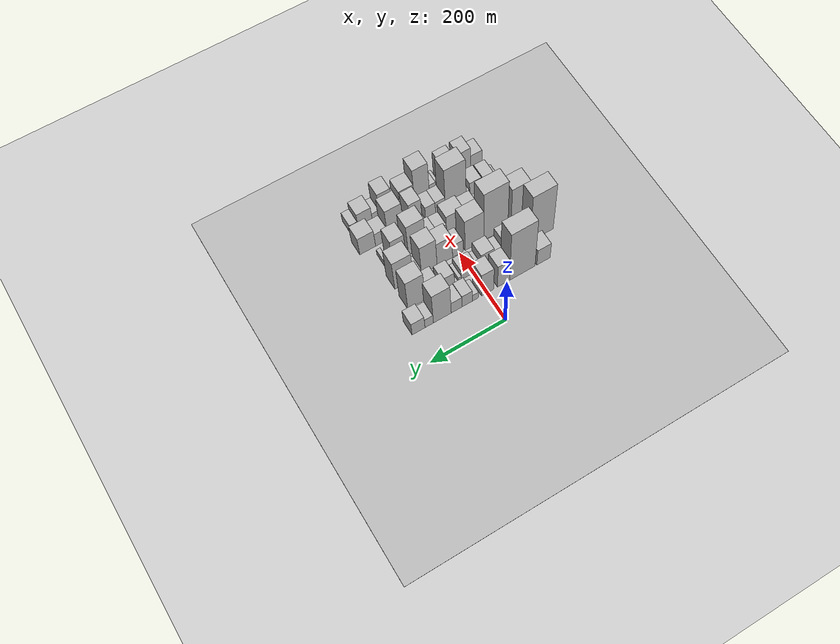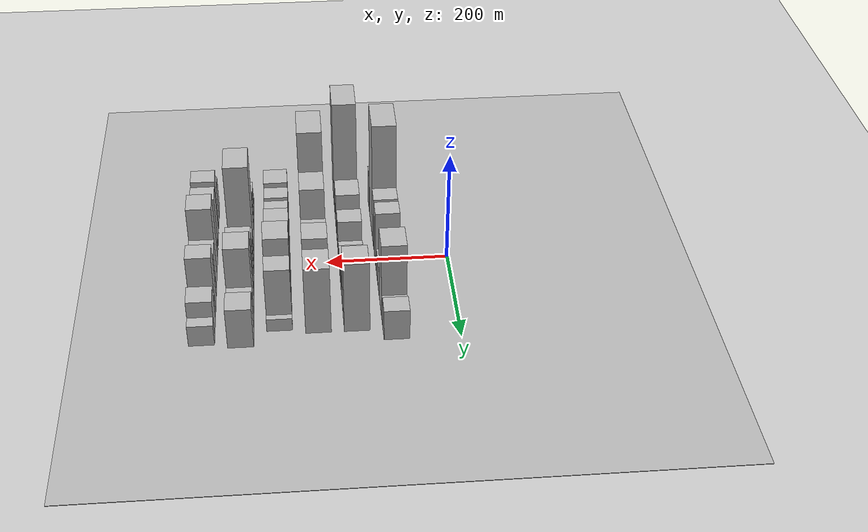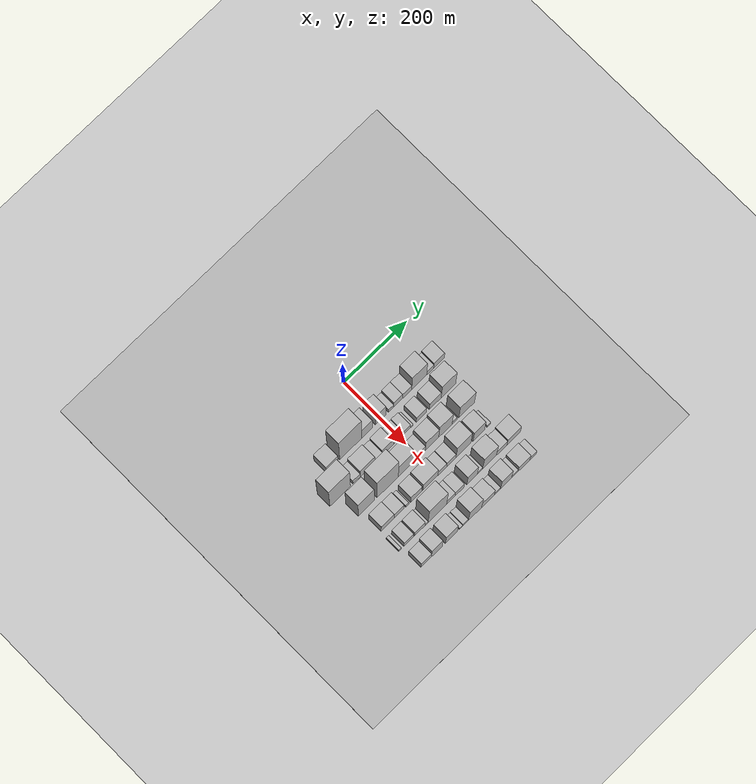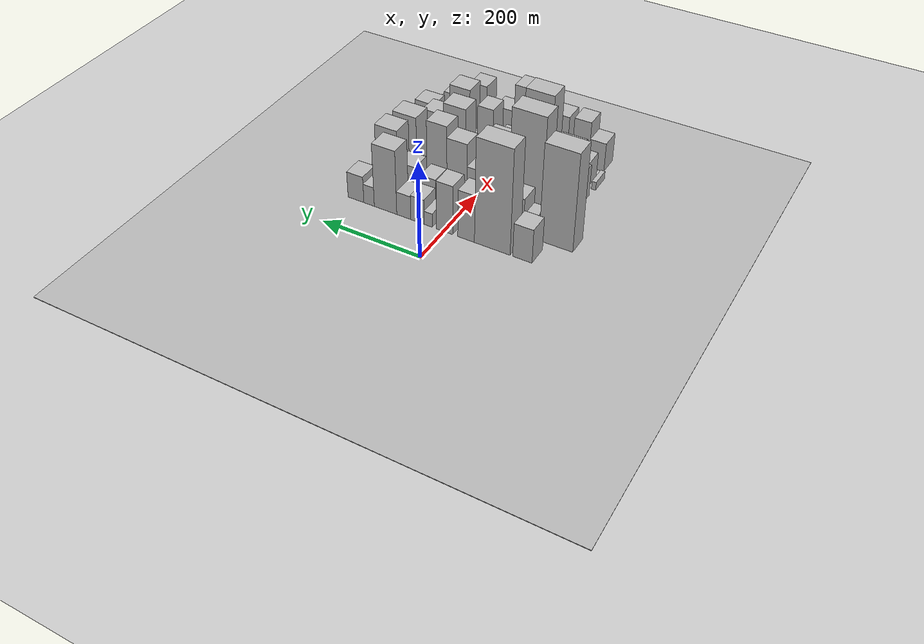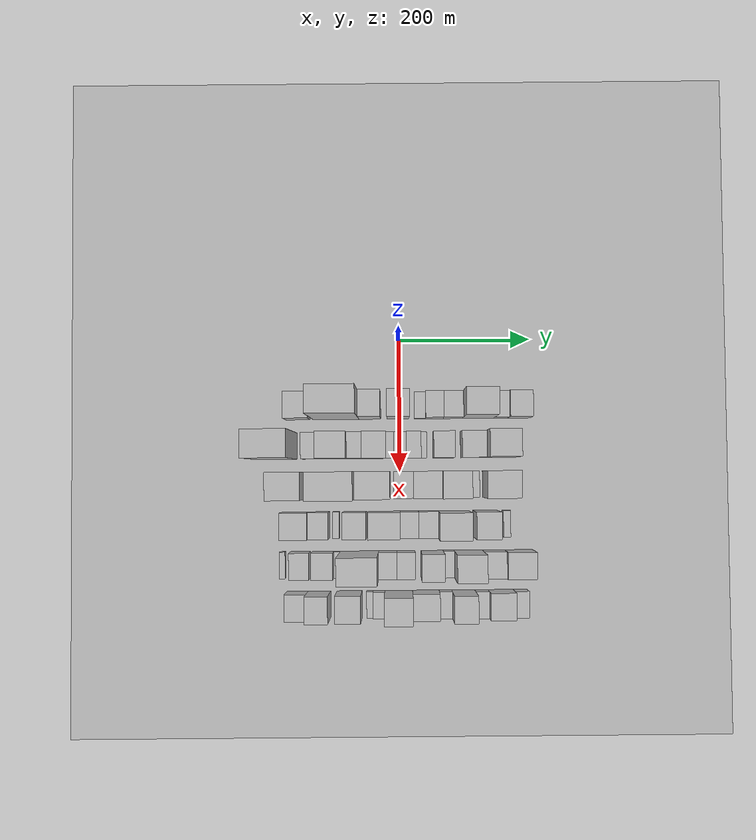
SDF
<sdf version="1.6">
 <world name="default">
  <include><name>ground_plane_1</name><uri>model://HANNAS_ground_plane</uri></include>
  <include>
   <name>ground_plane_2</name>
   <uri>model://HANNAS_ground_plane</uri>
   <pose>100 0 0  0 0 0</pose>
  </include>
  <model name="building_21">
   <static>1</static>
   <pose>100.0000 -154.0968 0 0.000000 0.000000 0.000000</pose>
   <link name="link">
    <pose>0 0 36.00 0 0 0</pose>
    <collision name="collision"><geometry><box><size>40.0000 36.9153 72.0000</size></box></geometry></collision>
    <visual name="visual">
     <cast_shadows>0</cast_shadows>
     <geometry><box><size>40.0000 36.9153 72.0000</size></box></geometry>
     <material>
      <script>
       <uri>model://HANNAS_wall/materials/scripts</uri>
       <uri>model://HANNAS_wall/materials/textures</uri>
       <name>vrc/HANNAS_wall</name>
      </script>
     </material>
    </visual>
   </link>
  </model>
  <model name="building_22">
   <static>1</static>
   <pose>100.0000 -95.8828 0 0.000000 0.000000 0.000000</pose>
   <link name="link">
    <pose>0 0 111.00 0 0 0</pose>
    <collision name="collision"><geometry><box><size>40.0000 69.5129 222.0000</size></box></geometry></collision>
    <visual name="visual">
     <cast_shadows>0</cast_shadows>
     <geometry><box><size>40.0000 69.5129 222.0000</size></box></geometry>
     <material>
      <script>
       <uri>model://HANNAS_wall/materials/scripts</uri>
       <uri>model://HANNAS_wall/materials/textures</uri>
       <name>vrc/HANNAS_wall</name>
      </script>
     </material>
    </visual>
   </link>
  </model>
  <model name="building_23">
   <static>1</static>
   <pose>100.0000 -44.6378 0 0.000000 0.000000 0.000000</pose>
   <link name="link">
    <pose>0 0 51.00 0 0 0</pose>
    <collision name="collision"><geometry><box><size>40.0000 32.9771 102.0000</size></box></geometry></collision>
    <visual name="visual">
     <cast_shadows>0</cast_shadows>
     <geometry><box><size>40.0000 32.9771 102.0000</size></box></geometry>
     <material>
      <script>
       <uri>model://HANNAS_wall/materials/scripts</uri>
       <uri>model://HANNAS_wall/materials/textures</uri>
       <name>vrc/HANNAS_wall</name>
      </script>
     </material>
    </visual>
   </link>
  </model>
  <model name="building_24">
   <static>1</static>
   <pose>100.0000 -1.5808 0 0.000000 0.000000 0.000000</pose>
   <link name="link">
    <pose>0 0 52.50 0 0 0</pose>
    <collision name="collision"><geometry><box><size>40.0000 33.1368 105.0000</size></box></geometry></collision>
    <visual name="visual">
     <cast_shadows>0</cast_shadows>
     <geometry><box><size>40.0000 33.1368 105.0000</size></box></geometry>
     <material>
      <script>
       <uri>model://HANNAS_wall/materials/scripts</uri>
       <uri>model://HANNAS_wall/materials/textures</uri>
       <name>vrc/HANNAS_wall</name>
      </script>
     </material>
    </visual>
   </link>
  </model>
  <model name="building_25">
   <static>1</static>
   <pose>100.0000 31.3695 0 0.000000 0.000000 0.000000</pose>
   <link name="link">
    <pose>0 0 15.00 0 0 0</pose>
    <collision name="collision"><geometry><box><size>40.0000 16.7637 30.0000</size></box></geometry></collision>
    <visual name="visual">
     <cast_shadows>0</cast_shadows>
     <geometry><box><size>40.0000 16.7637 30.0000</size></box></geometry>
     <material>
      <script>
       <uri>model://HANNAS_wall/materials/scripts</uri>
       <uri>model://HANNAS_wall/materials/textures</uri>
       <name>vrc/HANNAS_wall</name>
      </script>
     </material>
    </visual>
   </link>
  </model>
  <model name="building_26">
   <static>1</static>
   <pose>100.0000 53.5185 0 0.000000 0.000000 0.000000</pose>
   <link name="link">
    <pose>0 0 27.00 0 0 0</pose>
    <collision name="collision"><geometry><box><size>40.0000 27.5342 54.0000</size></box></geometry></collision>
    <visual name="visual">
     <cast_shadows>0</cast_shadows>
     <geometry><box><size>40.0000 27.5342 54.0000</size></box></geometry>
     <material>
      <script>
       <uri>model://HANNAS_wall/materials/scripts</uri>
       <uri>model://HANNAS_wall/materials/textures</uri>
       <name>vrc/HANNAS_wall</name>
      </script>
     </material>
    </visual>
   </link>
  </model>
  <model name="building_27">
   <static>1</static>
   <pose>100.0000 81.8426 0 0.000000 0.000000 0.000000</pose>
   <link name="link">
    <pose>0 0 25.50 0 0 0</pose>
    <collision name="collision"><geometry><box><size>40.0000 29.1141 51.0000</size></box></geometry></collision>
    <visual name="visual">
     <cast_shadows>0</cast_shadows>
     <geometry><box><size>40.0000 29.1141 51.0000</size></box></geometry>
     <material>
      <script>
       <uri>model://HANNAS_wall/materials/scripts</uri>
       <uri>model://HANNAS_wall/materials/textures</uri>
       <name>vrc/HANNAS_wall</name>
      </script>
     </material>
    </visual>
   </link>
  </model>
  <model name="building_28">
   <static>1</static>
   <pose>100.0000 120.0571 0 0.000000 0.000000 0.000000</pose>
   <link name="link">
    <pose>0 0 69.00 0 0 0</pose>
    <collision name="collision"><geometry><box><size>40.0000 47.3147 138.0000</size></box></geometry></collision>
    <visual name="visual">
     <cast_shadows>0</cast_shadows>
     <geometry><box><size>40.0000 47.3147 138.0000</size></box></geometry>
     <material>
      <script>
       <uri>model://HANNAS_wall/materials/scripts</uri>
       <uri>model://HANNAS_wall/materials/textures</uri>
       <name>vrc/HANNAS_wall</name>
      </script>
     </material>
    </visual>
   </link>
  </model>
  <model name="building_29">
   <static>1</static>
   <pose>100.0000 154.8591 0 0.000000 0.000000 0.000000</pose>
   <link name="link">
    <pose>0 0 21.00 0 0 0</pose>
    <collision name="collision"><geometry><box><size>40.0000 22.2893 42.0000</size></box></geometry></collision>
    <visual name="visual">
     <cast_shadows>0</cast_shadows>
     <geometry><box><size>40.0000 22.2893 42.0000</size></box></geometry>
     <material>
      <script>
       <uri>model://HANNAS_wall/materials/scripts</uri>
       <uri>model://HANNAS_wall/materials/textures</uri>
       <name>vrc/HANNAS_wall</name>
      </script>
     </material>
    </visual>
   </link>
  </model>
  <model name="building_30">
   <static>1</static>
   <pose>100.0000 183.0013 0 0.000000 0.000000 0.000000</pose>
   <link name="link">
    <pose>0 0 28.50 0 0 0</pose>
    <collision name="collision"><geometry><box><size>40.0000 33.9953 57.0000</size></box></geometry></collision>
    <visual name="visual">
     <cast_shadows>0</cast_shadows>
     <geometry><box><size>40.0000 33.9953 57.0000</size></box></geometry>
     <material>
      <script>
       <uri>model://HANNAS_wall/materials/scripts</uri>
       <uri>model://HANNAS_wall/materials/textures</uri>
       <name>vrc/HANNAS_wall</name>
      </script>
     </material>
    </visual>
   </link>
  </model>
  <model name="building_66">
   <static>1</static>
   <pose>160.0000 -188.2253 0 0.000000 0.000000 0.000000</pose>
   <link name="link">
    <pose>0 0 103.50 0 0 0</pose>
    <collision name="collision"><geometry><box><size>40.0000 64.3321 207.0000</size></box></geometry></collision>
    <visual name="visual">
     <cast_shadows>0</cast_shadows>
     <geometry><box><size>40.0000 64.3321 207.0000</size></box></geometry>
     <material>
      <script>
       <uri>model://HANNAS_wall/materials/scripts</uri>
       <uri>model://HANNAS_wall/materials/textures</uri>
       <name>vrc/HANNAS_wall</name>
      </script>
     </material>
    </visual>
   </link>
  </model>
  <model name="building_67">
   <static>1</static>
   <pose>160.0000 -136.6846 0 0.000000 0.000000 0.000000</pose>
   <link name="link">
    <pose>0 0 22.50 0 0 0</pose>
    <collision name="collision"><geometry><box><size>40.0000 22.7494 45.0000</size></box></geometry></collision>
    <visual name="visual">
     <cast_shadows>0</cast_shadows>
     <geometry><box><size>40.0000 22.7494 45.0000</size></box></geometry>
     <material>
      <script>
       <uri>model://HANNAS_wall/materials/scripts</uri>
       <uri>model://HANNAS_wall/materials/textures</uri>
       <name>vrc/HANNAS_wall</name>
      </script>
     </material>
    </visual>
   </link>
  </model>
  <model name="building_68">
   <static>1</static>
   <pose>160.0000 -102.4697 0 0.000000 0.000000 0.000000</pose>
   <link name="link">
    <pose>0 0 39.00 0 0 0</pose>
    <collision name="collision"><geometry><box><size>40.0000 45.6802 78.0000</size></box></geometry></collision>
    <visual name="visual">
     <cast_shadows>0</cast_shadows>
     <geometry><box><size>40.0000 45.6802 78.0000</size></box></geometry>
     <material>
      <script>
       <uri>model://HANNAS_wall/materials/scripts</uri>
       <uri>model://HANNAS_wall/materials/textures</uri>
       <name>vrc/HANNAS_wall</name>
      </script>
     </material>
    </visual>
   </link>
  </model>
  <model name="building_69">
   <static>1</static>
   <pose>160.0000 -67.9614 0 0.000000 0.000000 0.000000</pose>
   <link name="link">
    <pose>0 0 21.00 0 0 0</pose>
    <collision name="collision"><geometry><box><size>40.0000 23.3363 42.0000</size></box></geometry></collision>
    <visual name="visual">
     <cast_shadows>0</cast_shadows>
     <geometry><box><size>40.0000 23.3363 42.0000</size></box></geometry>
     <material>
      <script>
       <uri>model://HANNAS_wall/materials/scripts</uri>
       <uri>model://HANNAS_wall/materials/textures</uri>
       <name>vrc/HANNAS_wall</name>
      </script>
     </material>
    </visual>
   </link>
  </model>
  <model name="building_70">
   <static>1</static>
   <pose>160.0000 -38.4464 0 0.000000 0.000000 0.000000</pose>
   <link name="link">
    <pose>0 0 33.00 0 0 0</pose>
    <collision name="collision"><geometry><box><size>40.0000 35.6937 66.0000</size></box></geometry></collision>
    <visual name="visual">
     <cast_shadows>0</cast_shadows>
     <geometry><box><size>40.0000 35.6937 66.0000</size></box></geometry>
     <material>
      <script>
       <uri>model://HANNAS_wall/materials/scripts</uri>
       <uri>model://HANNAS_wall/materials/textures</uri>
       <name>vrc/HANNAS_wall</name>
      </script>
     </material>
    </visual>
   </link>
  </model>
  <model name="building_71">
   <static>1</static>
   <pose>160.0000 -14.7528 0 0.000000 0.000000 0.000000</pose>
   <link name="link">
    <pose>0 0 13.50 0 0 0</pose>
    <collision name="collision"><geometry><box><size>40.0000 11.6936 27.0000</size></box></geometry></collision>
    <visual name="visual">
     <cast_shadows>0</cast_shadows>
     <geometry><box><size>40.0000 11.6936 27.0000</size></box></geometry>
     <material>
      <script>
       <uri>model://HANNAS_wall/materials/scripts</uri>
       <uri>model://HANNAS_wall/materials/textures</uri>
       <name>vrc/HANNAS_wall</name>
      </script>
     </material>
    </visual>
   </link>
  </model>
  <model name="building_72">
   <static>1</static>
   <pose>160.0000 0.5937 0 0.000000 0.000000 0.000000</pose>
   <link name="link">
    <pose>0 0 18.00 0 0 0</pose>
    <collision name="collision"><geometry><box><size>40.0000 18.9995 36.0000</size></box></geometry></collision>
    <visual name="visual">
     <cast_shadows>0</cast_shadows>
     <geometry><box><size>40.0000 18.9995 36.0000</size></box></geometry>
     <material>
      <script>
       <uri>model://HANNAS_wall/materials/scripts</uri>
       <uri>model://HANNAS_wall/materials/textures</uri>
       <name>vrc/HANNAS_wall</name>
      </script>
     </material>
    </visual>
   </link>
  </model>
  <model name="building_73">
   <static>1</static>
   <pose>160.0000 21.3343 0 0.000000 0.000000 0.000000</pose>
   <link name="link">
    <pose>0 0 21.00 0 0 0</pose>
    <collision name="collision"><geometry><box><size>40.0000 22.4817 42.0000</size></box></geometry></collision>
    <visual name="visual">
     <cast_shadows>0</cast_shadows>
     <geometry><box><size>40.0000 22.4817 42.0000</size></box></geometry>
     <material>
      <script>
       <uri>model://HANNAS_wall/materials/scripts</uri>
       <uri>model://HANNAS_wall/materials/textures</uri>
       <name>vrc/HANNAS_wall</name>
      </script>
     </material>
    </visual>
   </link>
  </model>
  <model name="building_74">
   <static>1</static>
   <pose>160.0000 36.9012 0 0.000000 0.000000 0.000000</pose>
   <link name="link">
    <pose>0 0 9.00 0 0 0</pose>
    <collision name="collision"><geometry><box><size>40.0000 8.6519 18.0000</size></box></geometry></collision>
    <visual name="visual">
     <cast_shadows>0</cast_shadows>
     <geometry><box><size>40.0000 8.6519 18.0000</size></box></geometry>
     <material>
      <script>
       <uri>model://HANNAS_wall/materials/scripts</uri>
       <uri>model://HANNAS_wall/materials/textures</uri>
       <name>vrc/HANNAS_wall</name>
      </script>
     </material>
    </visual>
   </link>
  </model>
  <model name="building_75">
   <static>1</static>
   <pose>160.0000 67.1810 0 0.000000 0.000000 0.000000</pose>
   <link name="link">
    <pose>0 0 27.00 0 0 0</pose>
    <collision name="collision"><geometry><box><size>40.0000 31.9078 54.0000</size></box></geometry></collision>
    <visual name="visual">
     <cast_shadows>0</cast_shadows>
     <geometry><box><size>40.0000 31.9078 54.0000</size></box></geometry>
     <material>
      <script>
       <uri>model://HANNAS_wall/materials/scripts</uri>
       <uri>model://HANNAS_wall/materials/textures</uri>
       <name>vrc/HANNAS_wall</name>
      </script>
     </material>
    </visual>
   </link>
  </model>
  <model name="building_76">
   <static>1</static>
   <pose>160.0000 111.5208 0 0.000000 0.000000 0.000000</pose>
   <link name="link">
    <pose>0 0 33.00 0 0 0</pose>
    <collision name="collision"><geometry><box><size>40.0000 36.7718 66.0000</size></box></geometry></collision>
    <visual name="visual">
     <cast_shadows>0</cast_shadows>
     <geometry><box><size>40.0000 36.7718 66.0000</size></box></geometry>
     <material>
      <script>
       <uri>model://HANNAS_wall/materials/scripts</uri>
       <uri>model://HANNAS_wall/materials/textures</uri>
       <name>vrc/HANNAS_wall</name>
      </script>
     </material>
    </visual>
   </link>
  </model>
  <model name="building_77">
   <static>1</static>
   <pose>160.0000 152.9654 0 0.000000 0.000000 0.000000</pose>
   <link name="link">
    <pose>0 0 66.00 0 0 0</pose>
    <collision name="collision"><geometry><box><size>40.0000 46.1174 132.0000</size></box></geometry></collision>
    <visual name="visual">
     <cast_shadows>0</cast_shadows>
     <geometry><box><size>40.0000 46.1174 132.0000</size></box></geometry>
     <material>
      <script>
       <uri>model://HANNAS_wall/materials/scripts</uri>
       <uri>model://HANNAS_wall/materials/textures</uri>
       <name>vrc/HANNAS_wall</name>
      </script>
     </material>
    </visual>
   </link>
  </model>
  <model name="building_123">
   <static>1</static>
   <pose>220.0000 -165.6311 0 0.000000 0.000000 0.000000</pose>
   <link name="link">
    <pose>0 0 82.50 0 0 0</pose>
    <collision name="collision"><geometry><box><size>40.0000 49.7036 165.0000</size></box></geometry></collision>
    <visual name="visual">
     <cast_shadows>0</cast_shadows>
     <geometry><box><size>40.0000 49.7036 165.0000</size></box></geometry>
     <material>
      <script>
       <uri>model://HANNAS_wall/materials/scripts</uri>
       <uri>model://HANNAS_wall/materials/textures</uri>
       <name>vrc/HANNAS_wall</name>
      </script>
     </material>
    </visual>
   </link>
  </model>
  <model name="building_124">
   <static>1</static>
   <pose>220.0000 -98.4068 0 0.000000 0.000000 0.000000</pose>
   <link name="link">
    <pose>0 0 106.50 0 0 0</pose>
    <collision name="collision"><geometry><box><size>40.0000 66.7451 213.0000</size></box></geometry></collision>
    <visual name="visual">
     <cast_shadows>0</cast_shadows>
     <geometry><box><size>40.0000 66.7451 213.0000</size></box></geometry>
     <material>
      <script>
       <uri>model://HANNAS_wall/materials/scripts</uri>
       <uri>model://HANNAS_wall/materials/textures</uri>
       <name>vrc/HANNAS_wall</name>
      </script>
     </material>
    </visual>
   </link>
  </model>
  <model name="building_125">
   <static>1</static>
   <pose>220.0000 -39.5486 0 0.000000 0.000000 0.000000</pose>
   <link name="link">
    <pose>0 0 69.00 0 0 0</pose>
    <collision name="collision"><geometry><box><size>40.0000 50.9713 138.0000</size></box></geometry></collision>
    <visual name="visual">
     <cast_shadows>0</cast_shadows>
     <geometry><box><size>40.0000 50.9713 138.0000</size></box></geometry>
     <material>
      <script>
       <uri>model://HANNAS_wall/materials/scripts</uri>
       <uri>model://HANNAS_wall/materials/textures</uri>
       <name>vrc/HANNAS_wall</name>
      </script>
     </material>
    </visual>
   </link>
  </model>
  <model name="building_126">
   <static>1</static>
   <pose>220.0000 5.5678 0 0.000000 0.000000 0.000000</pose>
   <link name="link">
    <pose>0 0 28.50 0 0 0</pose>
    <collision name="collision"><geometry><box><size>40.0000 29.2616 57.0000</size></box></geometry></collision>
    <visual name="visual">
     <cast_shadows>0</cast_shadows>
     <geometry><box><size>40.0000 29.2616 57.0000</size></box></geometry>
     <material>
      <script>
       <uri>model://HANNAS_wall/materials/scripts</uri>
       <uri>model://HANNAS_wall/materials/textures</uri>
       <name>vrc/HANNAS_wall</name>
      </script>
     </material>
    </visual>
   </link>
  </model>
  <model name="building_127">
   <static>1</static>
   <pose>220.0000 41.1750 0 0.000000 0.000000 0.000000</pose>
   <link name="link">
    <pose>0 0 52.50 0 0 0</pose>
    <collision name="collision"><geometry><box><size>40.0000 41.9528 105.0000</size></box></geometry></collision>
    <visual name="visual">
     <cast_shadows>0</cast_shadows>
     <geometry><box><size>40.0000 41.9528 105.0000</size></box></geometry>
     <material>
      <script>
       <uri>model://HANNAS_wall/materials/scripts</uri>
       <uri>model://HANNAS_wall/materials/textures</uri>
       <name>vrc/HANNAS_wall</name>
      </script>
     </material>
    </visual>
   </link>
  </model>
  <model name="building_128">
   <static>1</static>
   <pose>220.0000 83.3244 0 0.000000 0.000000 0.000000</pose>
   <link name="link">
    <pose>0 0 64.50 0 0 0</pose>
    <collision name="collision"><geometry><box><size>40.0000 42.3461 129.0000</size></box></geometry></collision>
    <visual name="visual">
     <cast_shadows>0</cast_shadows>
     <geometry><box><size>40.0000 42.3461 129.0000</size></box></geometry>
     <material>
      <script>
       <uri>model://HANNAS_wall/materials/scripts</uri>
       <uri>model://HANNAS_wall/materials/textures</uri>
       <name>vrc/HANNAS_wall</name>
      </script>
     </material>
    </visual>
   </link>
  </model>
  <model name="building_129">
   <static>1</static>
   <pose>220.0000 112.3163 0 0.000000 0.000000 0.000000</pose>
   <link name="link">
    <pose>0 0 15.00 0 0 0</pose>
    <collision name="collision"><geometry><box><size>40.0000 15.6376 30.0000</size></box></geometry></collision>
    <visual name="visual">
     <cast_shadows>0</cast_shadows>
     <geometry><box><size>40.0000 15.6376 30.0000</size></box></geometry>
     <material>
      <script>
       <uri>model://HANNAS_wall/materials/scripts</uri>
       <uri>model://HANNAS_wall/materials/textures</uri>
       <name>vrc/HANNAS_wall</name>
      </script>
     </material>
    </visual>
   </link>
  </model>
  <model name="building_130">
   <static>1</static>
   <pose>220.0000 150.8957 0 0.000000 0.000000 0.000000</pose>
   <link name="link">
    <pose>0 0 63.00 0 0 0</pose>
    <collision name="collision"><geometry><box><size>40.0000 49.5213 126.0000</size></box></geometry></collision>
    <visual name="visual">
     <cast_shadows>0</cast_shadows>
     <geometry><box><size>40.0000 49.5213 126.0000</size></box></geometry>
     <material>
      <script>
       <uri>model://HANNAS_wall/materials/scripts</uri>
       <uri>model://HANNAS_wall/materials/textures</uri>
       <name>vrc/HANNAS_wall</name>
      </script>
     </material>
    </visual>
   </link>
  </model>
  <model name="building_175">
   <static>1</static>
   <pose>280.0000 -157.8525 0 0.000000 0.000000 0.000000</pose>
   <link name="link">
    <pose>0 0 34.50 0 0 0</pose>
    <collision name="collision"><geometry><box><size>40.0000 41.0170 69.0000</size></box></geometry></collision>
    <visual name="visual">
     <cast_shadows>0</cast_shadows>
     <geometry><box><size>40.0000 41.0170 69.0000</size></box></geometry>
     <material>
      <script>
       <uri>model://HANNAS_wall/materials/scripts</uri>
       <uri>model://HANNAS_wall/materials/textures</uri>
       <name>vrc/HANNAS_wall</name>
      </script>
     </material>
    </visual>
   </link>
  </model>
  <model name="building_176">
   <static>1</static>
   <pose>280.0000 -121.9343 0 0.000000 0.000000 0.000000</pose>
   <link name="link">
    <pose>0 0 30.00 0 0 0</pose>
    <collision name="collision"><geometry><box><size>40.0000 30.8192 60.0000</size></box></geometry></collision>
    <visual name="visual">
     <cast_shadows>0</cast_shadows>
     <geometry><box><size>40.0000 30.8192 60.0000</size></box></geometry>
     <material>
      <script>
       <uri>model://HANNAS_wall/materials/scripts</uri>
       <uri>model://HANNAS_wall/materials/textures</uri>
       <name>vrc/HANNAS_wall</name>
      </script>
     </material>
    </visual>
   </link>
  </model>
  <model name="building_177">
   <static>1</static>
   <pose>280.0000 -96.4898 0 0.000000 0.000000 0.000000</pose>
   <link name="link">
    <pose>0 0 12.00 0 0 0</pose>
    <collision name="collision"><geometry><box><size>40.0000 10.0699 24.0000</size></box></geometry></collision>
    <visual name="visual">
     <cast_shadows>0</cast_shadows>
     <geometry><box><size>40.0000 10.0699 24.0000</size></box></geometry>
     <material>
      <script>
       <uri>model://HANNAS_wall/materials/scripts</uri>
       <uri>model://HANNAS_wall/materials/textures</uri>
       <name>vrc/HANNAS_wall</name>
      </script>
     </material>
    </visual>
   </link>
  </model>
  <model name="building_178">
   <static>1</static>
   <pose>280.0000 -67.9290 0 0.000000 0.000000 0.000000</pose>
   <link name="link">
    <pose>0 0 34.50 0 0 0</pose>
    <collision name="collision"><geometry><box><size>40.0000 35.0517 69.0000</size></box></geometry></collision>
    <visual name="visual">
     <cast_shadows>0</cast_shadows>
     <geometry><box><size>40.0000 35.0517 69.0000</size></box></geometry>
     <material>
      <script>
       <uri>model://HANNAS_wall/materials/scripts</uri>
       <uri>model://HANNAS_wall/materials/textures</uri>
       <name>vrc/HANNAS_wall</name>
      </script>
     </material>
    </visual>
   </link>
  </model>
  <model name="building_179">
   <static>1</static>
   <pose>280.0000 -23.6596 0 0.000000 0.000000 0.000000</pose>
   <link name="link">
    <pose>0 0 40.50 0 0 0</pose>
    <collision name="collision"><geometry><box><size>40.0000 47.4871 81.0000</size></box></geometry></collision>
    <visual name="visual">
     <cast_shadows>0</cast_shadows>
     <geometry><box><size>40.0000 47.4871 81.0000</size></box></geometry>
     <material>
      <script>
       <uri>model://HANNAS_wall/materials/scripts</uri>
       <uri>model://HANNAS_wall/materials/textures</uri>
       <name>vrc/HANNAS_wall</name>
      </script>
     </material>
    </visual>
   </link>
  </model>
  <model name="building_180">
   <static>1</static>
   <pose>280.0000 13.9901 0 0.000000 0.000000 0.000000</pose>
   <link name="link">
    <pose>0 0 24.00 0 0 0</pose>
    <collision name="collision"><geometry><box><size>40.0000 27.8123 48.0000</size></box></geometry></collision>
    <visual name="visual">
     <cast_shadows>0</cast_shadows>
     <geometry><box><size>40.0000 27.8123 48.0000</size></box></geometry>
     <material>
      <script>
       <uri>model://HANNAS_wall/materials/scripts</uri>
       <uri>model://HANNAS_wall/materials/textures</uri>
       <name>vrc/HANNAS_wall</name>
      </script>
     </material>
    </visual>
   </link>
  </model>
  <model name="building_181">
   <static>1</static>
   <pose>280.0000 42.5396 0 0.000000 0.000000 0.000000</pose>
   <link name="link">
    <pose>0 0 25.50 0 0 0</pose>
    <collision name="collision"><geometry><box><size>40.0000 29.2867 51.0000</size></box></geometry></collision>
    <visual name="visual">
     <cast_shadows>0</cast_shadows>
     <geometry><box><size>40.0000 29.2867 51.0000</size></box></geometry>
     <material>
      <script>
       <uri>model://HANNAS_wall/materials/scripts</uri>
       <uri>model://HANNAS_wall/materials/textures</uri>
       <name>vrc/HANNAS_wall</name>
      </script>
     </material>
    </visual>
   </link>
  </model>
  <model name="building_182">
   <static>1</static>
   <pose>280.0000 80.6479 0 0.000000 0.000000 0.000000</pose>
   <link name="link">
    <pose>0 0 66.00 0 0 0</pose>
    <collision name="collision"><geometry><box><size>40.0000 46.9299 132.0000</size></box></geometry></collision>
    <visual name="visual">
     <cast_shadows>0</cast_shadows>
     <geometry><box><size>40.0000 46.9299 132.0000</size></box></geometry>
     <material>
      <script>
       <uri>model://HANNAS_wall/materials/scripts</uri>
       <uri>model://HANNAS_wall/materials/textures</uri>
       <name>vrc/HANNAS_wall</name>
      </script>
     </material>
    </visual>
   </link>
  </model>
  <model name="building_183">
   <static>1</static>
   <pose>280.0000 129.4287 0 0.000000 0.000000 0.000000</pose>
   <link name="link">
    <pose>0 0 52.50 0 0 0</pose>
    <collision name="collision"><geometry><box><size>40.0000 36.6317 105.0000</size></box></geometry></collision>
    <visual name="visual">
     <cast_shadows>0</cast_shadows>
     <geometry><box><size>40.0000 36.6317 105.0000</size></box></geometry>
     <material>
      <script>
       <uri>model://HANNAS_wall/materials/scripts</uri>
       <uri>model://HANNAS_wall/materials/textures</uri>
       <name>vrc/HANNAS_wall</name>
      </script>
     </material>
    </visual>
   </link>
  </model>
  <model name="building_184">
   <static>1</static>
   <pose>280.0000 161.1347 0 0.000000 0.000000 0.000000</pose>
   <link name="link">
    <pose>0 0 12.00 0 0 0</pose>
    <collision name="collision"><geometry><box><size>40.0000 10.7803 24.0000</size></box></geometry></collision>
    <visual name="visual">
     <cast_shadows>0</cast_shadows>
     <geometry><box><size>40.0000 10.7803 24.0000</size></box></geometry>
     <material>
      <script>
       <uri>model://HANNAS_wall/materials/scripts</uri>
       <uri>model://HANNAS_wall/materials/textures</uri>
       <name>vrc/HANNAS_wall</name>
      </script>
     </material>
    </visual>
   </link>
  </model>
  <model name="building_235">
   <static>1</static>
   <pose>340.0000 -178.0726 0 0.000000 0.000000 0.000000</pose>
   <link name="link">
    <pose>0 0 9.00 0 0 0</pose>
    <collision name="collision"><geometry><box><size>40.0000 8.5152 18.0000</size></box></geometry></collision>
    <visual name="visual">
     <cast_shadows>0</cast_shadows>
     <geometry><box><size>40.0000 8.5152 18.0000</size></box></geometry>
     <material>
      <script>
       <uri>model://HANNAS_wall/materials/scripts</uri>
       <uri>model://HANNAS_wall/materials/textures</uri>
       <name>vrc/HANNAS_wall</name>
      </script>
     </material>
    </visual>
   </link>
  </model>
  <model name="building_236">
   <static>1</static>
   <pose>340.0000 -150.9149 0 0.000000 0.000000 0.000000</pose>
   <link name="link">
    <pose>0 0 27.00 0 0 0</pose>
    <collision name="collision"><geometry><box><size>40.0000 29.8001 54.0000</size></box></geometry></collision>
    <visual name="visual">
     <cast_shadows>0</cast_shadows>
     <geometry><box><size>40.0000 29.8001 54.0000</size></box></geometry>
     <material>
      <script>
       <uri>model://HANNAS_wall/materials/scripts</uri>
       <uri>model://HANNAS_wall/materials/textures</uri>
       <name>vrc/HANNAS_wall</name>
      </script>
     </material>
    </visual>
   </link>
  </model>
  <model name="building_237">
   <static>1</static>
   <pose>340.0000 -116.6095 0 0.000000 0.000000 0.000000</pose>
   <link name="link">
    <pose>0 0 28.50 0 0 0</pose>
    <collision name="collision"><geometry><box><size>40.0000 32.8107 57.0000</size></box></geometry></collision>
    <visual name="visual">
     <cast_shadows>0</cast_shadows>
     <geometry><box><size>40.0000 32.8107 57.0000</size></box></geometry>
     <material>
      <script>
       <uri>model://HANNAS_wall/materials/scripts</uri>
       <uri>model://HANNAS_wall/materials/textures</uri>
       <name>vrc/HANNAS_wall</name>
      </script>
     </material>
    </visual>
   </link>
  </model>
  <model name="building_238">
   <static>1</static>
   <pose>340.0000 -95.2290 0 0.000000 0.000000 0.000000</pose>
   <link name="link">
    <pose>0 0 12.00 0 0 0</pose>
    <collision name="collision"><geometry><box><size>40.0000 9.9504 24.0000</size></box></geometry></collision>
    <visual name="visual">
     <cast_shadows>0</cast_shadows>
     <geometry><box><size>40.0000 9.9504 24.0000</size></box></geometry>
     <material>
      <script>
       <uri>model://HANNAS_wall/materials/scripts</uri>
       <uri>model://HANNAS_wall/materials/textures</uri>
       <name>vrc/HANNAS_wall</name>
      </script>
     </material>
    </visual>
   </link>
  </model>
  <model name="building_239">
   <static>1</static>
   <pose>340.0000 -61.3835 0 0.000000 0.000000 0.000000</pose>
   <link name="link">
    <pose>0 0 87.00 0 0 0</pose>
    <collision name="collision"><geometry><box><size>40.0000 57.7405 174.0000</size></box></geometry></collision>
    <visual name="visual">
     <cast_shadows>0</cast_shadows>
     <geometry><box><size>40.0000 57.7405 174.0000</size></box></geometry>
     <material>
      <script>
       <uri>model://HANNAS_wall/materials/scripts</uri>
       <uri>model://HANNAS_wall/materials/textures</uri>
       <name>vrc/HANNAS_wall</name>
      </script>
     </material>
    </visual>
   </link>
  </model>
  <model name="building_240">
   <static>1</static>
   <pose>340.0000 -18.9860 0 0.000000 0.000000 0.000000</pose>
   <link name="link">
    <pose>0 0 27.00 0 0 0</pose>
    <collision name="collision"><geometry><box><size>40.0000 27.0545 54.0000</size></box></geometry></collision>
    <visual name="visual">
     <cast_shadows>0</cast_shadows>
     <geometry><box><size>40.0000 27.0545 54.0000</size></box></geometry>
     <material>
      <script>
       <uri>model://HANNAS_wall/materials/scripts</uri>
       <uri>model://HANNAS_wall/materials/textures</uri>
       <name>vrc/HANNAS_wall</name>
      </script>
     </material>
    </visual>
   </link>
  </model>
  <model name="building_241">
   <static>1</static>
   <pose>340.0000 8.4342 0 0.000000 0.000000 0.000000</pose>
   <link name="link">
    <pose>0 0 27.00 0 0 0</pose>
    <collision name="collision"><geometry><box><size>40.0000 27.7860 54.0000</size></box></geometry></collision>
    <visual name="visual">
     <cast_shadows>0</cast_shadows>
     <geometry><box><size>40.0000 27.7860 54.0000</size></box></geometry>
     <material>
      <script>
       <uri>model://HANNAS_wall/materials/scripts</uri>
       <uri>model://HANNAS_wall/materials/textures</uri>
       <name>vrc/HANNAS_wall</name>
      </script>
     </material>
    </visual>
   </link>
  </model>
  <model name="building_242">
   <static>1</static>
   <pose>340.0000 47.9937 0 0.000000 0.000000 0.000000</pose>
   <link name="link">
    <pose>0 0 52.50 0 0 0</pose>
    <collision name="collision"><geometry><box><size>40.0000 33.3329 105.0000</size></box></geometry></collision>
    <visual name="visual">
     <cast_shadows>0</cast_shadows>
     <geometry><box><size>40.0000 33.3329 105.0000</size></box></geometry>
     <material>
      <script>
       <uri>model://HANNAS_wall/materials/scripts</uri>
       <uri>model://HANNAS_wall/materials/textures</uri>
       <name>vrc/HANNAS_wall</name>
      </script>
     </material>
    </visual>
   </link>
  </model>
  <model name="building_243">
   <static>1</static>
   <pose>340.0000 72.9889 0 0.000000 0.000000 0.000000</pose>
   <link name="link">
    <pose>0 0 15.00 0 0 0</pose>
    <collision name="collision"><geometry><box><size>40.0000 16.6573 30.0000</size></box></geometry></collision>
    <visual name="visual">
     <cast_shadows>0</cast_shadows>
     <geometry><box><size>40.0000 16.6573 30.0000</size></box></geometry>
     <material>
      <script>
       <uri>model://HANNAS_wall/materials/scripts</uri>
       <uri>model://HANNAS_wall/materials/textures</uri>
       <name>vrc/HANNAS_wall</name>
      </script>
     </material>
    </visual>
   </link>
  </model>
  <model name="building_244">
   <static>1</static>
   <pose>340.0000 102.9710 0 0.000000 0.000000 0.000000</pose>
   <link name="link">
    <pose>0 0 66.00 0 0 0</pose>
    <collision name="collision"><geometry><box><size>40.0000 43.3070 132.0000</size></box></geometry></collision>
    <visual name="visual">
     <cast_shadows>0</cast_shadows>
     <geometry><box><size>40.0000 43.3070 132.0000</size></box></geometry>
     <material>
      <script>
       <uri>model://HANNAS_wall/materials/scripts</uri>
       <uri>model://HANNAS_wall/materials/textures</uri>
       <name>vrc/HANNAS_wall</name>
      </script>
     </material>
    </visual>
   </link>
  </model>
  <model name="building_245">
   <static>1</static>
   <pose>340.0000 141.4477 0 0.000000 0.000000 0.000000</pose>
   <link name="link">
    <pose>0 0 28.50 0 0 0</pose>
    <collision name="collision"><geometry><box><size>40.0000 33.6463 57.0000</size></box></geometry></collision>
    <visual name="visual">
     <cast_shadows>0</cast_shadows>
     <geometry><box><size>40.0000 33.6463 57.0000</size></box></geometry>
     <material>
      <script>
       <uri>model://HANNAS_wall/materials/scripts</uri>
       <uri>model://HANNAS_wall/materials/textures</uri>
       <name>vrc/HANNAS_wall</name>
      </script>
     </material>
    </visual>
   </link>
  </model>
  <model name="building_246">
   <static>1</static>
   <pose>340.0000 179.5394 0 0.000000 0.000000 0.000000</pose>
   <link name="link">
    <pose>0 0 37.50 0 0 0</pose>
    <collision name="collision"><geometry><box><size>40.0000 42.5369 75.0000</size></box></geometry></collision>
    <visual name="visual">
     <cast_shadows>0</cast_shadows>
     <geometry><box><size>40.0000 42.5369 75.0000</size></box></geometry>
     <material>
      <script>
       <uri>model://HANNAS_wall/materials/scripts</uri>
       <uri>model://HANNAS_wall/materials/textures</uri>
       <name>vrc/HANNAS_wall</name>
      </script>
     </material>
    </visual>
   </link>
  </model>
  <model name="building_291">
   <static>1</static>
   <pose>400.0000 -155.9394 0 0.000000 0.000000 0.000000</pose>
   <link name="link">
    <pose>0 0 31.50 0 0 0</pose>
    <collision name="collision"><geometry><box><size>40.0000 32.0992 63.0000</size></box></geometry></collision>
    <visual name="visual">
     <cast_shadows>0</cast_shadows>
     <geometry><box><size>40.0000 32.0992 63.0000</size></box></geometry>
     <material>
      <script>
       <uri>model://HANNAS_wall/materials/scripts</uri>
       <uri>model://HANNAS_wall/materials/textures</uri>
       <name>vrc/HANNAS_wall</name>
      </script>
     </material>
    </visual>
   </link>
  </model>
  <model name="building_292">
   <static>1</static>
   <pose>400.0000 -122.8653 0 0.000000 0.000000 0.000000</pose>
   <link name="link">
    <pose>0 0 49.50 0 0 0</pose>
    <collision name="collision"><geometry><box><size>40.0000 34.0489 99.0000</size></box></geometry></collision>
    <visual name="visual">
     <cast_shadows>0</cast_shadows>
     <geometry><box><size>40.0000 34.0489 99.0000</size></box></geometry>
     <material>
      <script>
       <uri>model://HANNAS_wall/materials/scripts</uri>
       <uri>model://HANNAS_wall/materials/textures</uri>
       <name>vrc/HANNAS_wall</name>
      </script>
     </material>
    </visual>
   </link>
  </model>
  <model name="building_293">
   <static>1</static>
   <pose>400.0000 -77.0053 0 0.000000 0.000000 0.000000</pose>
   <link name="link">
    <pose>0 0 48.00 0 0 0</pose>
    <collision name="collision"><geometry><box><size>40.0000 37.6711 96.0000</size></box></geometry></collision>
    <visual name="visual">
     <cast_shadows>0</cast_shadows>
     <geometry><box><size>40.0000 37.6711 96.0000</size></box></geometry>
     <material>
      <script>
       <uri>model://HANNAS_wall/materials/scripts</uri>
       <uri>model://HANNAS_wall/materials/textures</uri>
       <name>vrc/HANNAS_wall</name>
      </script>
     </material>
    </visual>
   </link>
  </model>
  <model name="building_294">
   <static>1</static>
   <pose>400.0000 -46.3816 0 0.000000 0.000000 0.000000</pose>
   <link name="link">
    <pose>0 0 10.50 0 0 0</pose>
    <collision name="collision"><geometry><box><size>40.0000 9.5762 21.0000</size></box></geometry></collision>
    <visual name="visual">
     <cast_shadows>0</cast_shadows>
     <geometry><box><size>40.0000 9.5762 21.0000</size></box></geometry>
     <material>
      <script>
       <uri>model://HANNAS_wall/materials/scripts</uri>
       <uri>model://HANNAS_wall/materials/textures</uri>
       <name>vrc/HANNAS_wall</name>
      </script>
     </material>
    </visual>
   </link>
  </model>
  <model name="building_295">
   <static>1</static>
   <pose>400.0000 -32.6592 0 0.000000 0.000000 0.000000</pose>
   <link name="link">
    <pose>0 0 15.00 0 0 0</pose>
    <collision name="collision"><geometry><box><size>40.0000 17.8686 30.0000</size></box></geometry></collision>
    <visual name="visual">
     <cast_shadows>0</cast_shadows>
     <geometry><box><size>40.0000 17.8686 30.0000</size></box></geometry>
     <material>
      <script>
       <uri>model://HANNAS_wall/materials/scripts</uri>
       <uri>model://HANNAS_wall/materials/textures</uri>
       <name>vrc/HANNAS_wall</name>
      </script>
     </material>
    </visual>
   </link>
  </model>
  <model name="building_296">
   <static>1</static>
   <pose>400.0000 -2.8909 0 0.000000 0.000000 0.000000</pose>
   <link name="link">
    <pose>0 0 66.00 0 0 0</pose>
    <collision name="collision"><geometry><box><size>40.0000 41.6679 132.0000</size></box></geometry></collision>
    <visual name="visual">
     <cast_shadows>0</cast_shadows>
     <geometry><box><size>40.0000 41.6679 132.0000</size></box></geometry>
     <material>
      <script>
       <uri>model://HANNAS_wall/materials/scripts</uri>
       <uri>model://HANNAS_wall/materials/textures</uri>
       <name>vrc/HANNAS_wall</name>
      </script>
     </material>
    </visual>
   </link>
  </model>
  <model name="building_297">
   <static>1</static>
   <pose>400.0000 38.0597 0 0.000000 0.000000 0.000000</pose>
   <link name="link">
    <pose>0 0 36.00 0 0 0</pose>
    <collision name="collision"><geometry><box><size>40.0000 40.2333 72.0000</size></box></geometry></collision>
    <visual name="visual">
     <cast_shadows>0</cast_shadows>
     <geometry><box><size>40.0000 40.2333 72.0000</size></box></geometry>
     <material>
      <script>
       <uri>model://HANNAS_wall/materials/scripts</uri>
       <uri>model://HANNAS_wall/materials/textures</uri>
       <name>vrc/HANNAS_wall</name>
      </script>
     </material>
    </visual>
   </link>
  </model>
  <model name="building_298">
   <static>1</static>
   <pose>400.0000 67.8180 0 0.000000 0.000000 0.000000</pose>
   <link name="link">
    <pose>0 0 16.50 0 0 0</pose>
    <collision name="collision"><geometry><box><size>40.0000 19.2832 33.0000</size></box></geometry></collision>
    <visual name="visual">
     <cast_shadows>0</cast_shadows>
     <geometry><box><size>40.0000 19.2832 33.0000</size></box></geometry>
     <material>
      <script>
       <uri>model://HANNAS_wall/materials/scripts</uri>
       <uri>model://HANNAS_wall/materials/textures</uri>
       <name>vrc/HANNAS_wall</name>
      </script>
     </material>
    </visual>
   </link>
  </model>
  <model name="building_299">
   <static>1</static>
   <pose>400.0000 94.9290 0 0.000000 0.000000 0.000000</pose>
   <link name="link">
    <pose>0 0 54.00 0 0 0</pose>
    <collision name="collision"><geometry><box><size>40.0000 34.9387 108.0000</size></box></geometry></collision>
    <visual name="visual">
     <cast_shadows>0</cast_shadows>
     <geometry><box><size>40.0000 34.9387 108.0000</size></box></geometry>
     <material>
      <script>
       <uri>model://HANNAS_wall/materials/scripts</uri>
       <uri>model://HANNAS_wall/materials/textures</uri>
       <name>vrc/HANNAS_wall</name>
      </script>
     </material>
    </visual>
   </link>
  </model>
  <model name="building_300">
   <static>1</static>
   <pose>400.0000 122.5038 0 0.000000 0.000000 0.000000</pose>
   <link name="link">
    <pose>0 0 19.50 0 0 0</pose>
    <collision name="collision"><geometry><box><size>40.0000 20.2110 39.0000</size></box></geometry></collision>
    <visual name="visual">
     <cast_shadows>0</cast_shadows>
     <geometry><box><size>40.0000 20.2110 39.0000</size></box></geometry>
     <material>
      <script>
       <uri>model://HANNAS_wall/materials/scripts</uri>
       <uri>model://HANNAS_wall/materials/textures</uri>
       <name>vrc/HANNAS_wall</name>
      </script>
     </material>
    </visual>
   </link>
  </model>
  <model name="building_301">
   <static>1</static>
   <pose>400.0000 151.6943 0 0.000000 0.000000 0.000000</pose>
   <link name="link">
    <pose>0 0 34.50 0 0 0</pose>
    <collision name="collision"><geometry><box><size>40.0000 38.1701 69.0000</size></box></geometry></collision>
    <visual name="visual">
     <cast_shadows>0</cast_shadows>
     <geometry><box><size>40.0000 38.1701 69.0000</size></box></geometry>
     <material>
      <script>
       <uri>model://HANNAS_wall/materials/scripts</uri>
       <uri>model://HANNAS_wall/materials/textures</uri>
       <name>vrc/HANNAS_wall</name>
      </script>
     </material>
    </visual>
   </link>
  </model>
  <model name="building_302">
   <static>1</static>
   <pose>400.0000 181.3257 0 0.000000 0.000000 0.000000</pose>
   <link name="link">
    <pose>0 0 19.50 0 0 0</pose>
    <collision name="collision"><geometry><box><size>40.0000 21.0926 39.0000</size></box></geometry></collision>
    <visual name="visual">
     <cast_shadows>0</cast_shadows>
     <geometry><box><size>40.0000 21.0926 39.0000</size></box></geometry>
     <material>
      <script>
       <uri>model://HANNAS_wall/materials/scripts</uri>
       <uri>model://HANNAS_wall/materials/textures</uri>
       <name>vrc/HANNAS_wall</name>
      </script>
     </material>
    </visual>
   </link>
  </model>
 </world>
</sdf>
